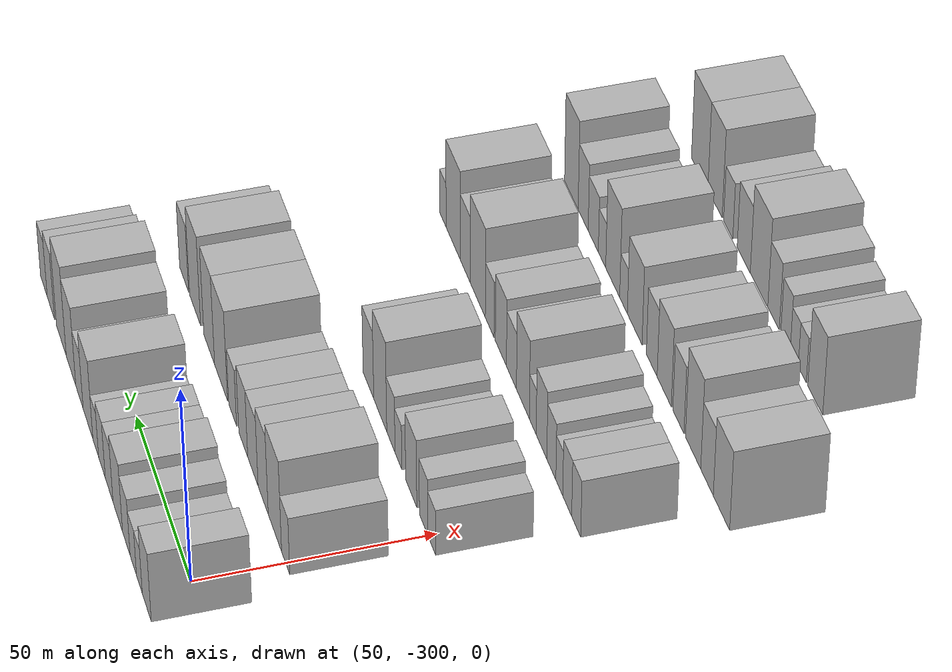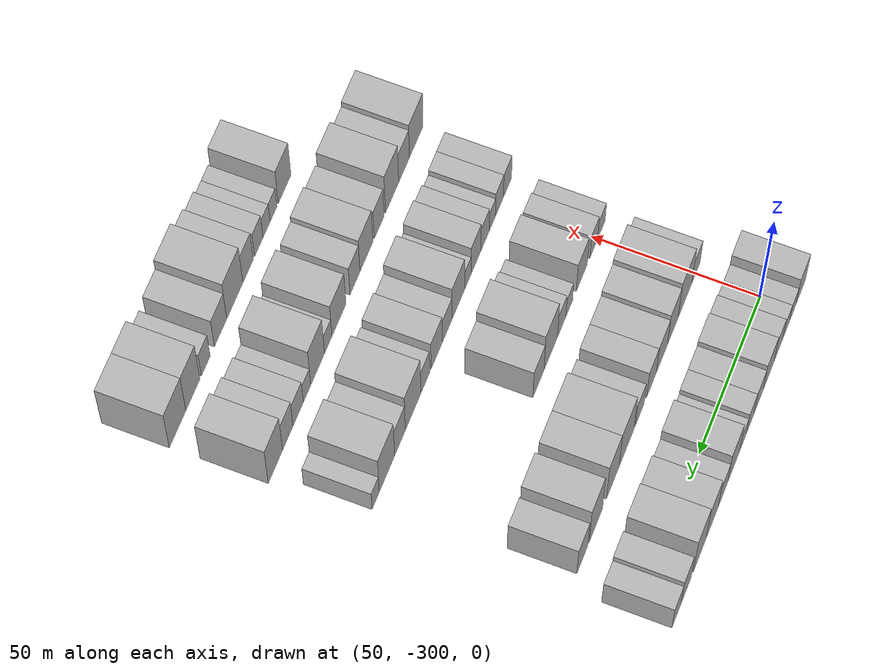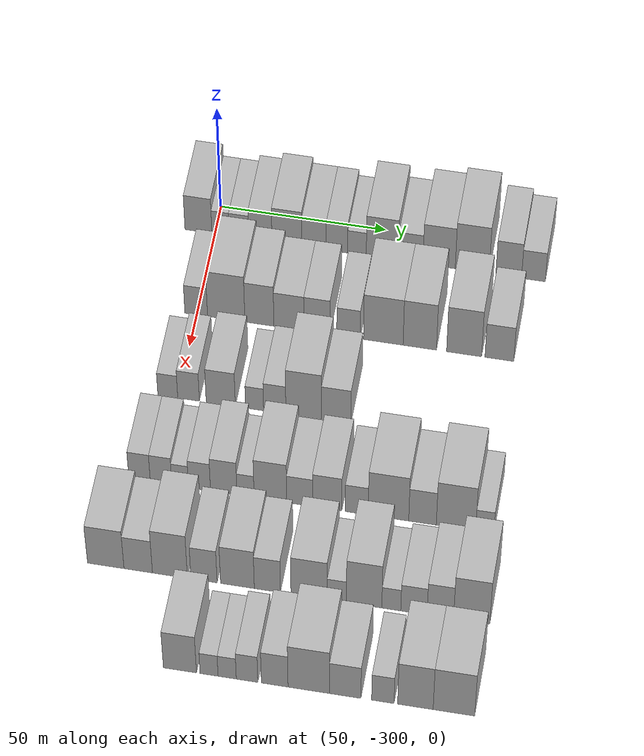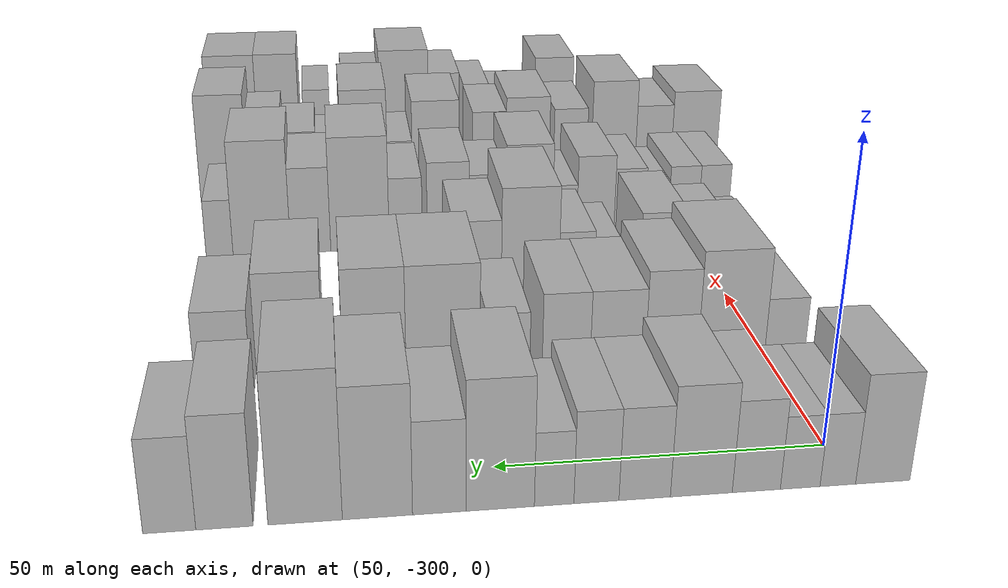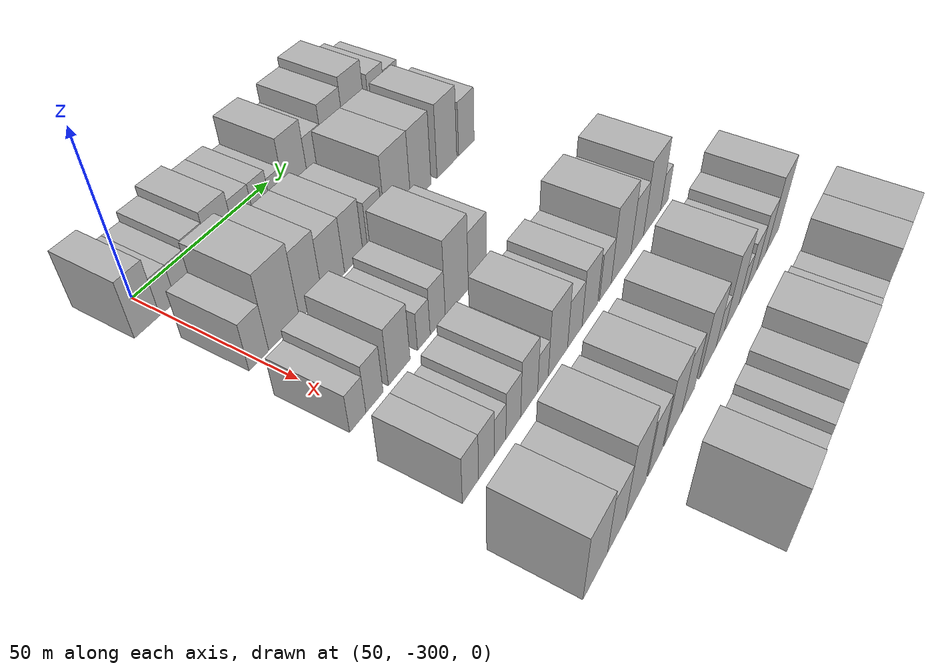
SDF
<sdf version="1.6">
 <world name="default">
  <model name="building_21">
   <static>1</static>
   <pose>50.0000 -304.9771 0 0.000000 0.000000 0.000000</pose>
   <link name="link">
    <pose>0 0 9.00 0 0 0</pose>
    <collision name="collision"><geometry><box><size>20.0000 8.1212 18.0000</size></box></geometry></collision>
    <visual name="visual">
     <cast_shadows>0</cast_shadows>
     <geometry><box><size>20.0000 8.1212 18.0000</size></box></geometry>
     <material>
      <script>
       <uri>model://HANNAS_wall/materials/scripts</uri>
       <uri>model://HANNAS_wall/materials/textures</uri>
       <name>vrc/HANNAS_wall</name>
      </script>
     </material>
    </visual>
   </link>
  </model>
  <model name="building_22">
   <static>1</static>
   <pose>50.0000 -298.2765 0 0.000000 0.000000 0.000000</pose>
   <link name="link">
    <pose>0 0 6.00 0 0 0</pose>
    <collision name="collision"><geometry><box><size>20.0000 5.2802 12.0000</size></box></geometry></collision>
    <visual name="visual">
     <cast_shadows>0</cast_shadows>
     <geometry><box><size>20.0000 5.2802 12.0000</size></box></geometry>
     <material>
      <script>
       <uri>model://HANNAS_wall/materials/scripts</uri>
       <uri>model://HANNAS_wall/materials/textures</uri>
       <name>vrc/HANNAS_wall</name>
      </script>
     </material>
    </visual>
   </link>
  </model>
  <model name="building_23">
   <static>1</static>
   <pose>50.0000 -292.7118 0 0.000000 0.000000 0.000000</pose>
   <link name="link">
    <pose>0 0 6.00 0 0 0</pose>
    <collision name="collision"><geometry><box><size>20.0000 5.8492 12.0000</size></box></geometry></collision>
    <visual name="visual">
     <cast_shadows>0</cast_shadows>
     <geometry><box><size>20.0000 5.8492 12.0000</size></box></geometry>
     <material>
      <script>
       <uri>model://HANNAS_wall/materials/scripts</uri>
       <uri>model://HANNAS_wall/materials/textures</uri>
       <name>vrc/HANNAS_wall</name>
      </script>
     </material>
    </visual>
   </link>
  </model>
  <model name="building_24">
   <static>1</static>
   <pose>50.0000 -286.2652 0 0.000000 0.000000 0.000000</pose>
   <link name="link">
    <pose>0 0 7.50 0 0 0</pose>
    <collision name="collision"><geometry><box><size>20.0000 7.0440 15.0000</size></box></geometry></collision>
    <visual name="visual">
     <cast_shadows>0</cast_shadows>
     <geometry><box><size>20.0000 7.0440 15.0000</size></box></geometry>
     <material>
      <script>
       <uri>model://HANNAS_wall/materials/scripts</uri>
       <uri>model://HANNAS_wall/materials/textures</uri>
       <name>vrc/HANNAS_wall</name>
      </script>
     </material>
    </visual>
   </link>
  </model>
  <model name="building_25">
   <static>1</static>
   <pose>50.0000 -278.2577 0 0.000000 0.000000 0.000000</pose>
   <link name="link">
    <pose>0 0 9.00 0 0 0</pose>
    <collision name="collision"><geometry><box><size>20.0000 8.9712 18.0000</size></box></geometry></collision>
    <visual name="visual">
     <cast_shadows>0</cast_shadows>
     <geometry><box><size>20.0000 8.9712 18.0000</size></box></geometry>
     <material>
      <script>
       <uri>model://HANNAS_wall/materials/scripts</uri>
       <uri>model://HANNAS_wall/materials/textures</uri>
       <name>vrc/HANNAS_wall</name>
      </script>
     </material>
    </visual>
   </link>
  </model>
  <model name="building_26">
   <static>1</static>
   <pose>50.0000 -270.0726 0 0.000000 0.000000 0.000000</pose>
   <link name="link">
    <pose>0 0 7.50 0 0 0</pose>
    <collision name="collision"><geometry><box><size>20.0000 7.3989 15.0000</size></box></geometry></collision>
    <visual name="visual">
     <cast_shadows>0</cast_shadows>
     <geometry><box><size>20.0000 7.3989 15.0000</size></box></geometry>
     <material>
      <script>
       <uri>model://HANNAS_wall/materials/scripts</uri>
       <uri>model://HANNAS_wall/materials/textures</uri>
       <name>vrc/HANNAS_wall</name>
      </script>
     </material>
    </visual>
   </link>
  </model>
  <model name="building_27">
   <static>1</static>
   <pose>50.0000 -263.1609 0 0.000000 0.000000 0.000000</pose>
   <link name="link">
    <pose>0 0 7.50 0 0 0</pose>
    <collision name="collision"><geometry><box><size>20.0000 6.4247 15.0000</size></box></geometry></collision>
    <visual name="visual">
     <cast_shadows>0</cast_shadows>
     <geometry><box><size>20.0000 6.4247 15.0000</size></box></geometry>
     <material>
      <script>
       <uri>model://HANNAS_wall/materials/scripts</uri>
       <uri>model://HANNAS_wall/materials/textures</uri>
       <name>vrc/HANNAS_wall</name>
      </script>
     </material>
    </visual>
   </link>
  </model>
  <model name="building_28">
   <static>1</static>
   <pose>50.0000 -257.1534 0 0.000000 0.000000 0.000000</pose>
   <link name="link">
    <pose>0 0 6.00 0 0 0</pose>
    <collision name="collision"><geometry><box><size>20.0000 5.5902 12.0000</size></box></geometry></collision>
    <visual name="visual">
     <cast_shadows>0</cast_shadows>
     <geometry><box><size>20.0000 5.5902 12.0000</size></box></geometry>
     <material>
      <script>
       <uri>model://HANNAS_wall/materials/scripts</uri>
       <uri>model://HANNAS_wall/materials/textures</uri>
       <name>vrc/HANNAS_wall</name>
      </script>
     </material>
    </visual>
   </link>
  </model>
  <model name="building_29">
   <static>1</static>
   <pose>50.0000 -249.5516 0 0.000000 0.000000 0.000000</pose>
   <link name="link">
    <pose>0 0 10.50 0 0 0</pose>
    <collision name="collision"><geometry><box><size>20.0000 9.6134 21.0000</size></box></geometry></collision>
    <visual name="visual">
     <cast_shadows>0</cast_shadows>
     <geometry><box><size>20.0000 9.6134 21.0000</size></box></geometry>
     <material>
      <script>
       <uri>model://HANNAS_wall/materials/scripts</uri>
       <uri>model://HANNAS_wall/materials/textures</uri>
       <name>vrc/HANNAS_wall</name>
      </script>
     </material>
    </visual>
   </link>
  </model>
  <model name="building_30">
   <static>1</static>
   <pose>50.0000 -241.0410 0 0.000000 0.000000 0.000000</pose>
   <link name="link">
    <pose>0 0 7.50 0 0 0</pose>
    <collision name="collision"><geometry><box><size>20.0000 7.4080 15.0000</size></box></geometry></collision>
    <visual name="visual">
     <cast_shadows>0</cast_shadows>
     <geometry><box><size>20.0000 7.4080 15.0000</size></box></geometry>
     <material>
      <script>
       <uri>model://HANNAS_wall/materials/scripts</uri>
       <uri>model://HANNAS_wall/materials/textures</uri>
       <name>vrc/HANNAS_wall</name>
      </script>
     </material>
    </visual>
   </link>
  </model>
  <model name="building_31">
   <static>1</static>
   <pose>50.0000 -232.5062 0 0.000000 0.000000 0.000000</pose>
   <link name="link">
    <pose>0 0 10.50 0 0 0</pose>
    <collision name="collision"><geometry><box><size>20.0000 9.6617 21.0000</size></box></geometry></collision>
    <visual name="visual">
     <cast_shadows>0</cast_shadows>
     <geometry><box><size>20.0000 9.6617 21.0000</size></box></geometry>
     <material>
      <script>
       <uri>model://HANNAS_wall/materials/scripts</uri>
       <uri>model://HANNAS_wall/materials/textures</uri>
       <name>vrc/HANNAS_wall</name>
      </script>
     </material>
    </visual>
   </link>
  </model>
  <model name="building_32">
   <static>1</static>
   <pose>50.0000 -222.6130 0 0.000000 0.000000 0.000000</pose>
   <link name="link">
    <pose>0 0 12.00 0 0 0</pose>
    <collision name="collision"><geometry><box><size>20.0000 10.1246 24.0000</size></box></geometry></collision>
    <visual name="visual">
     <cast_shadows>0</cast_shadows>
     <geometry><box><size>20.0000 10.1246 24.0000</size></box></geometry>
     <material>
      <script>
       <uri>model://HANNAS_wall/materials/scripts</uri>
       <uri>model://HANNAS_wall/materials/textures</uri>
       <name>vrc/HANNAS_wall</name>
      </script>
     </material>
    </visual>
   </link>
  </model>
  <model name="building_33">
   <static>1</static>
   <pose>50.0000 -211.7098 0 0.000000 0.000000 0.000000</pose>
   <link name="link">
    <pose>0 0 9.00 0 0 0</pose>
    <collision name="collision"><geometry><box><size>20.0000 7.6817 18.0000</size></box></geometry></collision>
    <visual name="visual">
     <cast_shadows>0</cast_shadows>
     <geometry><box><size>20.0000 7.6817 18.0000</size></box></geometry>
     <material>
      <script>
       <uri>model://HANNAS_wall/materials/scripts</uri>
       <uri>model://HANNAS_wall/materials/textures</uri>
       <name>vrc/HANNAS_wall</name>
      </script>
     </material>
    </visual>
   </link>
  </model>
  <model name="building_34">
   <static>1</static>
   <pose>50.0000 -204.3308 0 0.000000 0.000000 0.000000</pose>
   <link name="link">
    <pose>0 0 7.50 0 0 0</pose>
    <collision name="collision"><geometry><box><size>20.0000 7.0763 15.0000</size></box></geometry></collision>
    <visual name="visual">
     <cast_shadows>0</cast_shadows>
     <geometry><box><size>20.0000 7.0763 15.0000</size></box></geometry>
     <material>
      <script>
       <uri>model://HANNAS_wall/materials/scripts</uri>
       <uri>model://HANNAS_wall/materials/textures</uri>
       <name>vrc/HANNAS_wall</name>
      </script>
     </material>
    </visual>
   </link>
  </model>
  <model name="building_142">
   <static>1</static>
   <pose>79.0000 -300.0942 0 0.000000 0.000000 0.000000</pose>
   <link name="link">
    <pose>0 0 7.50 0 0 0</pose>
    <collision name="collision"><geometry><box><size>20.0000 6.7628 15.0000</size></box></geometry></collision>
    <visual name="visual">
     <cast_shadows>0</cast_shadows>
     <geometry><box><size>20.0000 6.7628 15.0000</size></box></geometry>
     <material>
      <script>
       <uri>model://HANNAS_wall/materials/scripts</uri>
       <uri>model://HANNAS_wall/materials/textures</uri>
       <name>vrc/HANNAS_wall</name>
      </script>
     </material>
    </visual>
   </link>
  </model>
  <model name="building_143">
   <static>1</static>
   <pose>79.0000 -291.1347 0 0.000000 0.000000 0.000000</pose>
   <link name="link">
    <pose>0 0 12.00 0 0 0</pose>
    <collision name="collision"><geometry><box><size>20.0000 11.1562 24.0000</size></box></geometry></collision>
    <visual name="visual">
     <cast_shadows>0</cast_shadows>
     <geometry><box><size>20.0000 11.1562 24.0000</size></box></geometry>
     <material>
      <script>
       <uri>model://HANNAS_wall/materials/scripts</uri>
       <uri>model://HANNAS_wall/materials/textures</uri>
       <name>vrc/HANNAS_wall</name>
      </script>
     </material>
    </visual>
   </link>
  </model>
  <model name="building_144">
   <static>1</static>
   <pose>79.0000 -281.2378 0 0.000000 0.000000 0.000000</pose>
   <link name="link">
    <pose>0 0 10.50 0 0 0</pose>
    <collision name="collision"><geometry><box><size>20.0000 8.6376 21.0000</size></box></geometry></collision>
    <visual name="visual">
     <cast_shadows>0</cast_shadows>
     <geometry><box><size>20.0000 8.6376 21.0000</size></box></geometry>
     <material>
      <script>
       <uri>model://HANNAS_wall/materials/scripts</uri>
       <uri>model://HANNAS_wall/materials/textures</uri>
       <name>vrc/HANNAS_wall</name>
      </script>
     </material>
    </visual>
   </link>
  </model>
  <model name="building_145">
   <static>1</static>
   <pose>79.0000 -272.4501 0 0.000000 0.000000 0.000000</pose>
   <link name="link">
    <pose>0 0 9.00 0 0 0</pose>
    <collision name="collision"><geometry><box><size>20.0000 8.9377 18.0000</size></box></geometry></collision>
    <visual name="visual">
     <cast_shadows>0</cast_shadows>
     <geometry><box><size>20.0000 8.9377 18.0000</size></box></geometry>
     <material>
      <script>
       <uri>model://HANNAS_wall/materials/scripts</uri>
       <uri>model://HANNAS_wall/materials/textures</uri>
       <name>vrc/HANNAS_wall</name>
      </script>
     </material>
    </visual>
   </link>
  </model>
  <model name="building_146">
   <static>1</static>
   <pose>79.0000 -264.1058 0 0.000000 0.000000 0.000000</pose>
   <link name="link">
    <pose>0 0 9.00 0 0 0</pose>
    <collision name="collision"><geometry><box><size>20.0000 7.7509 18.0000</size></box></geometry></collision>
    <visual name="visual">
     <cast_shadows>0</cast_shadows>
     <geometry><box><size>20.0000 7.7509 18.0000</size></box></geometry>
     <material>
      <script>
       <uri>model://HANNAS_wall/materials/scripts</uri>
       <uri>model://HANNAS_wall/materials/textures</uri>
       <name>vrc/HANNAS_wall</name>
      </script>
     </material>
    </visual>
   </link>
  </model>
  <model name="building_147">
   <static>1</static>
   <pose>79.0000 -254.7581 0 0.000000 0.000000 0.000000</pose>
   <link name="link">
    <pose>0 0 7.50 0 0 0</pose>
    <collision name="collision"><geometry><box><size>20.0000 6.9445 15.0000</size></box></geometry></collision>
    <visual name="visual">
     <cast_shadows>0</cast_shadows>
     <geometry><box><size>20.0000 6.9445 15.0000</size></box></geometry>
     <material>
      <script>
       <uri>model://HANNAS_wall/materials/scripts</uri>
       <uri>model://HANNAS_wall/materials/textures</uri>
       <name>vrc/HANNAS_wall</name>
      </script>
     </material>
    </visual>
   </link>
  </model>
  <model name="building_148">
   <static>1</static>
   <pose>79.0000 -244.4226 0 0.000000 0.000000 0.000000</pose>
   <link name="link">
    <pose>0 0 12.00 0 0 0</pose>
    <collision name="collision"><geometry><box><size>20.0000 11.7264 24.0000</size></box></geometry></collision>
    <visual name="visual">
     <cast_shadows>0</cast_shadows>
     <geometry><box><size>20.0000 11.7264 24.0000</size></box></geometry>
     <material>
      <script>
       <uri>model://HANNAS_wall/materials/scripts</uri>
       <uri>model://HANNAS_wall/materials/textures</uri>
       <name>vrc/HANNAS_wall</name>
      </script>
     </material>
    </visual>
   </link>
  </model>
  <model name="building_149">
   <static>1</static>
   <pose>79.0000 -233.6272 0 0.000000 0.000000 0.000000</pose>
   <link name="link">
    <pose>0 0 12.00 0 0 0</pose>
    <collision name="collision"><geometry><box><size>20.0000 9.8645 24.0000</size></box></geometry></collision>
    <visual name="visual">
     <cast_shadows>0</cast_shadows>
     <geometry><box><size>20.0000 9.8645 24.0000</size></box></geometry>
     <material>
      <script>
       <uri>model://HANNAS_wall/materials/scripts</uri>
       <uri>model://HANNAS_wall/materials/textures</uri>
       <name>vrc/HANNAS_wall</name>
      </script>
     </material>
    </visual>
   </link>
  </model>
  <model name="building_150">
   <static>1</static>
   <pose>79.0000 -220.5355 0 0.000000 0.000000 0.000000</pose>
   <link name="link">
    <pose>0 0 12.00 0 0 0</pose>
    <collision name="collision"><geometry><box><size>20.0000 10.3187 24.0000</size></box></geometry></collision>
    <visual name="visual">
     <cast_shadows>0</cast_shadows>
     <geometry><box><size>20.0000 10.3187 24.0000</size></box></geometry>
     <material>
      <script>
       <uri>model://HANNAS_wall/materials/scripts</uri>
       <uri>model://HANNAS_wall/materials/textures</uri>
       <name>vrc/HANNAS_wall</name>
      </script>
     </material>
    </visual>
   </link>
  </model>
  <model name="building_151">
   <static>1</static>
   <pose>79.0000 -210.1328 0 0.000000 0.000000 0.000000</pose>
   <link name="link">
    <pose>0 0 9.00 0 0 0</pose>
    <collision name="collision"><geometry><box><size>20.0000 8.4867 18.0000</size></box></geometry></collision>
    <visual name="visual">
     <cast_shadows>0</cast_shadows>
     <geometry><box><size>20.0000 8.4867 18.0000</size></box></geometry>
     <material>
      <script>
       <uri>model://HANNAS_wall/materials/scripts</uri>
       <uri>model://HANNAS_wall/materials/textures</uri>
       <name>vrc/HANNAS_wall</name>
      </script>
     </material>
    </visual>
   </link>
  </model>
  <model name="building_256">
   <static>1</static>
   <pose>108.0000 -302.9293 0 0.000000 0.000000 0.000000</pose>
   <link name="link">
    <pose>0 0 6.00 0 0 0</pose>
    <collision name="collision"><geometry><box><size>20.0000 5.8659 12.0000</size></box></geometry></collision>
    <visual name="visual">
     <cast_shadows>0</cast_shadows>
     <geometry><box><size>20.0000 5.8659 12.0000</size></box></geometry>
     <material>
      <script>
       <uri>model://HANNAS_wall/materials/scripts</uri>
       <uri>model://HANNAS_wall/materials/textures</uri>
       <name>vrc/HANNAS_wall</name>
      </script>
     </material>
    </visual>
   </link>
  </model>
  <model name="building_257">
   <static>1</static>
   <pose>108.0000 -296.7991 0 0.000000 0.000000 0.000000</pose>
   <link name="link">
    <pose>0 0 7.50 0 0 0</pose>
    <collision name="collision"><geometry><box><size>20.0000 6.3945 15.0000</size></box></geometry></collision>
    <visual name="visual">
     <cast_shadows>0</cast_shadows>
     <geometry><box><size>20.0000 6.3945 15.0000</size></box></geometry>
     <material>
      <script>
       <uri>model://HANNAS_wall/materials/scripts</uri>
       <uri>model://HANNAS_wall/materials/textures</uri>
       <name>vrc/HANNAS_wall</name>
      </script>
     </material>
    </visual>
   </link>
  </model>
  <model name="building_258">
   <static>1</static>
   <pose>108.0000 -287.3062 0 0.000000 0.000000 0.000000</pose>
   <link name="link">
    <pose>0 0 9.00 0 0 0</pose>
    <collision name="collision"><geometry><box><size>20.0000 8.5913 18.0000</size></box></geometry></collision>
    <visual name="visual">
     <cast_shadows>0</cast_shadows>
     <geometry><box><size>20.0000 8.5913 18.0000</size></box></geometry>
     <material>
      <script>
       <uri>model://HANNAS_wall/materials/scripts</uri>
       <uri>model://HANNAS_wall/materials/textures</uri>
       <name>vrc/HANNAS_wall</name>
      </script>
     </material>
    </visual>
   </link>
  </model>
  <model name="building_259">
   <static>1</static>
   <pose>108.0000 -277.3535 0 0.000000 0.000000 0.000000</pose>
   <link name="link">
    <pose>0 0 6.00 0 0 0</pose>
    <collision name="collision"><geometry><box><size>20.0000 5.3141 12.0000</size></box></geometry></collision>
    <visual name="visual">
     <cast_shadows>0</cast_shadows>
     <geometry><box><size>20.0000 5.3141 12.0000</size></box></geometry>
     <material>
      <script>
       <uri>model://HANNAS_wall/materials/scripts</uri>
       <uri>model://HANNAS_wall/materials/textures</uri>
       <name>vrc/HANNAS_wall</name>
      </script>
     </material>
    </visual>
   </link>
  </model>
  <model name="building_260">
   <static>1</static>
   <pose>108.0000 -271.4224 0 0.000000 0.000000 0.000000</pose>
   <link name="link">
    <pose>0 0 7.50 0 0 0</pose>
    <collision name="collision"><geometry><box><size>20.0000 6.5480 15.0000</size></box></geometry></collision>
    <visual name="visual">
     <cast_shadows>0</cast_shadows>
     <geometry><box><size>20.0000 6.5480 15.0000</size></box></geometry>
     <material>
      <script>
       <uri>model://HANNAS_wall/materials/scripts</uri>
       <uri>model://HANNAS_wall/materials/textures</uri>
       <name>vrc/HANNAS_wall</name>
      </script>
     </material>
    </visual>
   </link>
  </model>
  <model name="building_261">
   <static>1</static>
   <pose>108.0000 -262.9198 0 0.000000 0.000000 0.000000</pose>
   <link name="link">
    <pose>0 0 12.00 0 0 0</pose>
    <collision name="collision"><geometry><box><size>20.0000 10.4573 24.0000</size></box></geometry></collision>
    <visual name="visual">
     <cast_shadows>0</cast_shadows>
     <geometry><box><size>20.0000 10.4573 24.0000</size></box></geometry>
     <material>
      <script>
       <uri>model://HANNAS_wall/materials/scripts</uri>
       <uri>model://HANNAS_wall/materials/textures</uri>
       <name>vrc/HANNAS_wall</name>
      </script>
     </material>
    </visual>
   </link>
  </model>
  <model name="building_262">
   <static>1</static>
   <pose>108.0000 -253.3755 0 0.000000 0.000000 0.000000</pose>
   <link name="link">
    <pose>0 0 9.00 0 0 0</pose>
    <collision name="collision"><geometry><box><size>20.0000 8.6313 18.0000</size></box></geometry></collision>
    <visual name="visual">
     <cast_shadows>0</cast_shadows>
     <geometry><box><size>20.0000 8.6313 18.0000</size></box></geometry>
     <material>
      <script>
       <uri>model://HANNAS_wall/materials/scripts</uri>
       <uri>model://HANNAS_wall/materials/textures</uri>
       <name>vrc/HANNAS_wall</name>
      </script>
     </material>
    </visual>
   </link>
  </model>
  <model name="building_364">
   <static>1</static>
   <pose>137.0000 -305.4698 0 0.000000 0.000000 0.000000</pose>
   <link name="link">
    <pose>0 0 7.50 0 0 0</pose>
    <collision name="collision"><geometry><box><size>20.0000 6.2484 15.0000</size></box></geometry></collision>
    <visual name="visual">
     <cast_shadows>0</cast_shadows>
     <geometry><box><size>20.0000 6.2484 15.0000</size></box></geometry>
     <material>
      <script>
       <uri>model://HANNAS_wall/materials/scripts</uri>
       <uri>model://HANNAS_wall/materials/textures</uri>
       <name>vrc/HANNAS_wall</name>
      </script>
     </material>
    </visual>
   </link>
  </model>
  <model name="building_365">
   <static>1</static>
   <pose>137.0000 -299.2043 0 0.000000 0.000000 0.000000</pose>
   <link name="link">
    <pose>0 0 7.50 0 0 0</pose>
    <collision name="collision"><geometry><box><size>20.0000 6.2826 15.0000</size></box></geometry></collision>
    <visual name="visual">
     <cast_shadows>0</cast_shadows>
     <geometry><box><size>20.0000 6.2826 15.0000</size></box></geometry>
     <material>
      <script>
       <uri>model://HANNAS_wall/materials/scripts</uri>
       <uri>model://HANNAS_wall/materials/textures</uri>
       <name>vrc/HANNAS_wall</name>
      </script>
     </material>
    </visual>
   </link>
  </model>
  <model name="building_366">
   <static>1</static>
   <pose>137.0000 -293.6504 0 0.000000 0.000000 0.000000</pose>
   <link name="link">
    <pose>0 0 6.00 0 0 0</pose>
    <collision name="collision"><geometry><box><size>20.0000 4.8252 12.0000</size></box></geometry></collision>
    <visual name="visual">
     <cast_shadows>0</cast_shadows>
     <geometry><box><size>20.0000 4.8252 12.0000</size></box></geometry>
     <material>
      <script>
       <uri>model://HANNAS_wall/materials/scripts</uri>
       <uri>model://HANNAS_wall/materials/textures</uri>
       <name>vrc/HANNAS_wall</name>
      </script>
     </material>
    </visual>
   </link>
  </model>
  <model name="building_367">
   <static>1</static>
   <pose>137.0000 -288.0318 0 0.000000 0.000000 0.000000</pose>
   <link name="link">
    <pose>0 0 7.50 0 0 0</pose>
    <collision name="collision"><geometry><box><size>20.0000 6.4121 15.0000</size></box></geometry></collision>
    <visual name="visual">
     <cast_shadows>0</cast_shadows>
     <geometry><box><size>20.0000 6.4121 15.0000</size></box></geometry>
     <material>
      <script>
       <uri>model://HANNAS_wall/materials/scripts</uri>
       <uri>model://HANNAS_wall/materials/textures</uri>
       <name>vrc/HANNAS_wall</name>
      </script>
     </material>
    </visual>
   </link>
  </model>
  <model name="building_368">
   <static>1</static>
   <pose>137.0000 -280.9792 0 0.000000 0.000000 0.000000</pose>
   <link name="link">
    <pose>0 0 9.00 0 0 0</pose>
    <collision name="collision"><geometry><box><size>20.0000 7.6930 18.0000</size></box></geometry></collision>
    <visual name="visual">
     <cast_shadows>0</cast_shadows>
     <geometry><box><size>20.0000 7.6930 18.0000</size></box></geometry>
     <material>
      <script>
       <uri>model://HANNAS_wall/materials/scripts</uri>
       <uri>model://HANNAS_wall/materials/textures</uri>
       <name>vrc/HANNAS_wall</name>
      </script>
     </material>
    </visual>
   </link>
  </model>
  <model name="building_369">
   <static>1</static>
   <pose>137.0000 -274.6477 0 0.000000 0.000000 0.000000</pose>
   <link name="link">
    <pose>0 0 6.00 0 0 0</pose>
    <collision name="collision"><geometry><box><size>20.0000 4.9699 12.0000</size></box></geometry></collision>
    <visual name="visual">
     <cast_shadows>0</cast_shadows>
     <geometry><box><size>20.0000 4.9699 12.0000</size></box></geometry>
     <material>
      <script>
       <uri>model://HANNAS_wall/materials/scripts</uri>
       <uri>model://HANNAS_wall/materials/textures</uri>
       <name>vrc/HANNAS_wall</name>
      </script>
     </material>
    </visual>
   </link>
  </model>
  <model name="building_370">
   <static>1</static>
   <pose>137.0000 -267.4307 0 0.000000 0.000000 0.000000</pose>
   <link name="link">
    <pose>0 0 10.50 0 0 0</pose>
    <collision name="collision"><geometry><box><size>20.0000 9.4641 21.0000</size></box></geometry></collision>
    <visual name="visual">
     <cast_shadows>0</cast_shadows>
     <geometry><box><size>20.0000 9.4641 21.0000</size></box></geometry>
     <material>
      <script>
       <uri>model://HANNAS_wall/materials/scripts</uri>
       <uri>model://HANNAS_wall/materials/textures</uri>
       <name>vrc/HANNAS_wall</name>
      </script>
     </material>
    </visual>
   </link>
  </model>
  <model name="building_371">
   <static>1</static>
   <pose>137.0000 -258.9625 0 0.000000 0.000000 0.000000</pose>
   <link name="link">
    <pose>0 0 7.50 0 0 0</pose>
    <collision name="collision"><geometry><box><size>20.0000 7.4724 15.0000</size></box></geometry></collision>
    <visual name="visual">
     <cast_shadows>0</cast_shadows>
     <geometry><box><size>20.0000 7.4724 15.0000</size></box></geometry>
     <material>
      <script>
       <uri>model://HANNAS_wall/materials/scripts</uri>
       <uri>model://HANNAS_wall/materials/textures</uri>
       <name>vrc/HANNAS_wall</name>
      </script>
     </material>
    </visual>
   </link>
  </model>
  <model name="building_372">
   <static>1</static>
   <pose>137.0000 -250.9957 0 0.000000 0.000000 0.000000</pose>
   <link name="link">
    <pose>0 0 9.00 0 0 0</pose>
    <collision name="collision"><geometry><box><size>20.0000 8.4612 18.0000</size></box></geometry></collision>
    <visual name="visual">
     <cast_shadows>0</cast_shadows>
     <geometry><box><size>20.0000 8.4612 18.0000</size></box></geometry>
     <material>
      <script>
       <uri>model://HANNAS_wall/materials/scripts</uri>
       <uri>model://HANNAS_wall/materials/textures</uri>
       <name>vrc/HANNAS_wall</name>
      </script>
     </material>
    </visual>
   </link>
  </model>
  <model name="building_373">
   <static>1</static>
   <pose>137.0000 -242.4454 0 0.000000 0.000000 0.000000</pose>
   <link name="link">
    <pose>0 0 7.50 0 0 0</pose>
    <collision name="collision"><geometry><box><size>20.0000 6.6393 15.0000</size></box></geometry></collision>
    <visual name="visual">
     <cast_shadows>0</cast_shadows>
     <geometry><box><size>20.0000 6.6393 15.0000</size></box></geometry>
     <material>
      <script>
       <uri>model://HANNAS_wall/materials/scripts</uri>
       <uri>model://HANNAS_wall/materials/textures</uri>
       <name>vrc/HANNAS_wall</name>
      </script>
     </material>
    </visual>
   </link>
  </model>
  <model name="building_374">
   <static>1</static>
   <pose>137.0000 -233.2963 0 0.000000 0.000000 0.000000</pose>
   <link name="link">
    <pose>0 0 12.00 0 0 0</pose>
    <collision name="collision"><geometry><box><size>20.0000 11.6589 24.0000</size></box></geometry></collision>
    <visual name="visual">
     <cast_shadows>0</cast_shadows>
     <geometry><box><size>20.0000 11.6589 24.0000</size></box></geometry>
     <material>
      <script>
       <uri>model://HANNAS_wall/materials/scripts</uri>
       <uri>model://HANNAS_wall/materials/textures</uri>
       <name>vrc/HANNAS_wall</name>
      </script>
     </material>
    </visual>
   </link>
  </model>
  <model name="building_375">
   <static>1</static>
   <pose>137.0000 -223.5000 0 0.000000 0.000000 0.000000</pose>
   <link name="link">
    <pose>0 0 9.00 0 0 0</pose>
    <collision name="collision"><geometry><box><size>20.0000 7.9338 18.0000</size></box></geometry></collision>
    <visual name="visual">
     <cast_shadows>0</cast_shadows>
     <geometry><box><size>20.0000 7.9338 18.0000</size></box></geometry>
     <material>
      <script>
       <uri>model://HANNAS_wall/materials/scripts</uri>
       <uri>model://HANNAS_wall/materials/textures</uri>
       <name>vrc/HANNAS_wall</name>
      </script>
     </material>
    </visual>
   </link>
  </model>
  <model name="building_376">
   <static>1</static>
   <pose>137.0000 -213.8796 0 0.000000 0.000000 0.000000</pose>
   <link name="link">
    <pose>0 0 12.00 0 0 0</pose>
    <collision name="collision"><geometry><box><size>20.0000 11.3070 24.0000</size></box></geometry></collision>
    <visual name="visual">
     <cast_shadows>0</cast_shadows>
     <geometry><box><size>20.0000 11.3070 24.0000</size></box></geometry>
     <material>
      <script>
       <uri>model://HANNAS_wall/materials/scripts</uri>
       <uri>model://HANNAS_wall/materials/textures</uri>
       <name>vrc/HANNAS_wall</name>
      </script>
     </material>
    </visual>
   </link>
  </model>
  <model name="building_377">
   <static>1</static>
   <pose>137.0000 -205.6017 0 0.000000 0.000000 0.000000</pose>
   <link name="link">
    <pose>0 0 6.00 0 0 0</pose>
    <collision name="collision"><geometry><box><size>20.0000 5.2489 12.0000</size></box></geometry></collision>
    <visual name="visual">
     <cast_shadows>0</cast_shadows>
     <geometry><box><size>20.0000 5.2489 12.0000</size></box></geometry>
     <material>
      <script>
       <uri>model://HANNAS_wall/materials/scripts</uri>
       <uri>model://HANNAS_wall/materials/textures</uri>
       <name>vrc/HANNAS_wall</name>
      </script>
     </material>
    </visual>
   </link>
  </model>
  <model name="building_487">
   <static>1</static>
   <pose>166.0000 -309.4447 0 0.000000 0.000000 0.000000</pose>
   <link name="link">
    <pose>0 0 10.50 0 0 0</pose>
    <collision name="collision"><geometry><box><size>20.0000 10.4912 21.0000</size></box></geometry></collision>
    <visual name="visual">
     <cast_shadows>0</cast_shadows>
     <geometry><box><size>20.0000 10.4912 21.0000</size></box></geometry>
     <material>
      <script>
       <uri>model://HANNAS_wall/materials/scripts</uri>
       <uri>model://HANNAS_wall/materials/textures</uri>
       <name>vrc/HANNAS_wall</name>
      </script>
     </material>
    </visual>
   </link>
  </model>
  <model name="building_488">
   <static>1</static>
   <pose>166.0000 -300.0980 0 0.000000 0.000000 0.000000</pose>
   <link name="link">
    <pose>0 0 9.00 0 0 0</pose>
    <collision name="collision"><geometry><box><size>20.0000 8.2022 18.0000</size></box></geometry></collision>
    <visual name="visual">
     <cast_shadows>0</cast_shadows>
     <geometry><box><size>20.0000 8.2022 18.0000</size></box></geometry>
     <material>
      <script>
       <uri>model://HANNAS_wall/materials/scripts</uri>
       <uri>model://HANNAS_wall/materials/textures</uri>
       <name>vrc/HANNAS_wall</name>
      </script>
     </material>
    </visual>
   </link>
  </model>
  <model name="building_489">
   <static>1</static>
   <pose>166.0000 -290.9706 0 0.000000 0.000000 0.000000</pose>
   <link name="link">
    <pose>0 0 12.00 0 0 0</pose>
    <collision name="collision"><geometry><box><size>20.0000 10.0526 24.0000</size></box></geometry></collision>
    <visual name="visual">
     <cast_shadows>0</cast_shadows>
     <geometry><box><size>20.0000 10.0526 24.0000</size></box></geometry>
     <material>
      <script>
       <uri>model://HANNAS_wall/materials/scripts</uri>
       <uri>model://HANNAS_wall/materials/textures</uri>
       <name>vrc/HANNAS_wall</name>
      </script>
     </material>
    </visual>
   </link>
  </model>
  <model name="building_490">
   <static>1</static>
   <pose>166.0000 -281.1921 0 0.000000 0.000000 0.000000</pose>
   <link name="link">
    <pose>0 0 9.00 0 0 0</pose>
    <collision name="collision"><geometry><box><size>20.0000 7.5045 18.0000</size></box></geometry></collision>
    <visual name="visual">
     <cast_shadows>0</cast_shadows>
     <geometry><box><size>20.0000 7.5045 18.0000</size></box></geometry>
     <material>
      <script>
       <uri>model://HANNAS_wall/materials/scripts</uri>
       <uri>model://HANNAS_wall/materials/textures</uri>
       <name>vrc/HANNAS_wall</name>
      </script>
     </material>
    </visual>
   </link>
  </model>
  <model name="building_491">
   <static>1</static>
   <pose>166.0000 -271.6089 0 0.000000 0.000000 0.000000</pose>
   <link name="link">
    <pose>0 0 10.50 0 0 0</pose>
    <collision name="collision"><geometry><box><size>20.0000 9.6619 21.0000</size></box></geometry></collision>
    <visual name="visual">
     <cast_shadows>0</cast_shadows>
     <geometry><box><size>20.0000 9.6619 21.0000</size></box></geometry>
     <material>
      <script>
       <uri>model://HANNAS_wall/materials/scripts</uri>
       <uri>model://HANNAS_wall/materials/textures</uri>
       <name>vrc/HANNAS_wall</name>
      </script>
     </material>
    </visual>
   </link>
  </model>
  <model name="building_492">
   <static>1</static>
   <pose>166.0000 -263.0461 0 0.000000 0.000000 0.000000</pose>
   <link name="link">
    <pose>0 0 9.00 0 0 0</pose>
    <collision name="collision"><geometry><box><size>20.0000 7.4637 18.0000</size></box></geometry></collision>
    <visual name="visual">
     <cast_shadows>0</cast_shadows>
     <geometry><box><size>20.0000 7.4637 18.0000</size></box></geometry>
     <material>
      <script>
       <uri>model://HANNAS_wall/materials/scripts</uri>
       <uri>model://HANNAS_wall/materials/textures</uri>
       <name>vrc/HANNAS_wall</name>
      </script>
     </material>
    </visual>
   </link>
  </model>
  <model name="building_493">
   <static>1</static>
   <pose>166.0000 -251.1322 0 0.000000 0.000000 0.000000</pose>
   <link name="link">
    <pose>0 0 10.50 0 0 0</pose>
    <collision name="collision"><geometry><box><size>20.0000 10.3640 21.0000</size></box></geometry></collision>
    <visual name="visual">
     <cast_shadows>0</cast_shadows>
     <geometry><box><size>20.0000 10.3640 21.0000</size></box></geometry>
     <material>
      <script>
       <uri>model://HANNAS_wall/materials/scripts</uri>
       <uri>model://HANNAS_wall/materials/textures</uri>
       <name>vrc/HANNAS_wall</name>
      </script>
     </material>
    </visual>
   </link>
  </model>
  <model name="building_494">
   <static>1</static>
   <pose>166.0000 -243.2175 0 0.000000 0.000000 0.000000</pose>
   <link name="link">
    <pose>0 0 6.00 0 0 0</pose>
    <collision name="collision"><geometry><box><size>20.0000 5.4654 12.0000</size></box></geometry></collision>
    <visual name="visual">
     <cast_shadows>0</cast_shadows>
     <geometry><box><size>20.0000 5.4654 12.0000</size></box></geometry>
     <material>
      <script>
       <uri>model://HANNAS_wall/materials/scripts</uri>
       <uri>model://HANNAS_wall/materials/textures</uri>
       <name>vrc/HANNAS_wall</name>
      </script>
     </material>
    </visual>
   </link>
  </model>
  <model name="building_495">
   <static>1</static>
   <pose>166.0000 -235.4438 0 0.000000 0.000000 0.000000</pose>
   <link name="link">
    <pose>0 0 12.00 0 0 0</pose>
    <collision name="collision"><geometry><box><size>20.0000 10.0822 24.0000</size></box></geometry></collision>
    <visual name="visual">
     <cast_shadows>0</cast_shadows>
     <geometry><box><size>20.0000 10.0822 24.0000</size></box></geometry>
     <material>
      <script>
       <uri>model://HANNAS_wall/materials/scripts</uri>
       <uri>model://HANNAS_wall/materials/textures</uri>
       <name>vrc/HANNAS_wall</name>
      </script>
     </material>
    </visual>
   </link>
  </model>
  <model name="building_496">
   <static>1</static>
   <pose>166.0000 -227.7041 0 0.000000 0.000000 0.000000</pose>
   <link name="link">
    <pose>0 0 6.00 0 0 0</pose>
    <collision name="collision"><geometry><box><size>20.0000 5.3972 12.0000</size></box></geometry></collision>
    <visual name="visual">
     <cast_shadows>0</cast_shadows>
     <geometry><box><size>20.0000 5.3972 12.0000</size></box></geometry>
     <material>
      <script>
       <uri>model://HANNAS_wall/materials/scripts</uri>
       <uri>model://HANNAS_wall/materials/textures</uri>
       <name>vrc/HANNAS_wall</name>
      </script>
     </material>
    </visual>
   </link>
  </model>
  <model name="building_497">
   <static>1</static>
   <pose>166.0000 -221.2666 0 0.000000 0.000000 0.000000</pose>
   <link name="link">
    <pose>0 0 7.50 0 0 0</pose>
    <collision name="collision"><geometry><box><size>20.0000 7.4778 15.0000</size></box></geometry></collision>
    <visual name="visual">
     <cast_shadows>0</cast_shadows>
     <geometry><box><size>20.0000 7.4778 15.0000</size></box></geometry>
     <material>
      <script>
       <uri>model://HANNAS_wall/materials/scripts</uri>
       <uri>model://HANNAS_wall/materials/textures</uri>
       <name>vrc/HANNAS_wall</name>
      </script>
     </material>
    </visual>
   </link>
  </model>
  <model name="building_498">
   <static>1</static>
   <pose>166.0000 -213.7743 0 0.000000 0.000000 0.000000</pose>
   <link name="link">
    <pose>0 0 9.00 0 0 0</pose>
    <collision name="collision"><geometry><box><size>20.0000 7.5068 18.0000</size></box></geometry></collision>
    <visual name="visual">
     <cast_shadows>0</cast_shadows>
     <geometry><box><size>20.0000 7.5068 18.0000</size></box></geometry>
     <material>
      <script>
       <uri>model://HANNAS_wall/materials/scripts</uri>
       <uri>model://HANNAS_wall/materials/textures</uri>
       <name>vrc/HANNAS_wall</name>
      </script>
     </material>
    </visual>
   </link>
  </model>
  <model name="building_499">
   <static>1</static>
   <pose>166.0000 -204.8923 0 0.000000 0.000000 0.000000</pose>
   <link name="link">
    <pose>0 0 12.00 0 0 0</pose>
    <collision name="collision"><geometry><box><size>20.0000 10.2572 24.0000</size></box></geometry></collision>
    <visual name="visual">
     <cast_shadows>0</cast_shadows>
     <geometry><box><size>20.0000 10.2572 24.0000</size></box></geometry>
     <material>
      <script>
       <uri>model://HANNAS_wall/materials/scripts</uri>
       <uri>model://HANNAS_wall/materials/textures</uri>
       <name>vrc/HANNAS_wall</name>
      </script>
     </material>
    </visual>
   </link>
  </model>
  <model name="building_606">
   <static>1</static>
   <pose>195.0000 -282.4857 0 0.000000 0.000000 0.000000</pose>
   <link name="link">
    <pose>0 0 10.50 0 0 0</pose>
    <collision name="collision"><geometry><box><size>20.0000 9.3647 21.0000</size></box></geometry></collision>
    <visual name="visual">
     <cast_shadows>0</cast_shadows>
     <geometry><box><size>20.0000 9.3647 21.0000</size></box></geometry>
     <material>
      <script>
       <uri>model://HANNAS_wall/materials/scripts</uri>
       <uri>model://HANNAS_wall/materials/textures</uri>
       <name>vrc/HANNAS_wall</name>
      </script>
     </material>
    </visual>
   </link>
  </model>
  <model name="building_607">
   <static>1</static>
   <pose>195.0000 -274.2572 0 0.000000 0.000000 0.000000</pose>
   <link name="link">
    <pose>0 0 6.00 0 0 0</pose>
    <collision name="collision"><geometry><box><size>20.0000 5.0924 12.0000</size></box></geometry></collision>
    <visual name="visual">
     <cast_shadows>0</cast_shadows>
     <geometry><box><size>20.0000 5.0924 12.0000</size></box></geometry>
     <material>
      <script>
       <uri>model://HANNAS_wall/materials/scripts</uri>
       <uri>model://HANNAS_wall/materials/textures</uri>
       <name>vrc/HANNAS_wall</name>
      </script>
     </material>
    </visual>
   </link>
  </model>
  <model name="building_608">
   <static>1</static>
   <pose>195.0000 -269.1349 0 0.000000 0.000000 0.000000</pose>
   <link name="link">
    <pose>0 0 6.00 0 0 0</pose>
    <collision name="collision"><geometry><box><size>20.0000 5.1522 12.0000</size></box></geometry></collision>
    <visual name="visual">
     <cast_shadows>0</cast_shadows>
     <geometry><box><size>20.0000 5.1522 12.0000</size></box></geometry>
     <material>
      <script>
       <uri>model://HANNAS_wall/materials/scripts</uri>
       <uri>model://HANNAS_wall/materials/textures</uri>
       <name>vrc/HANNAS_wall</name>
      </script>
     </material>
    </visual>
   </link>
  </model>
  <model name="building_609">
   <static>1</static>
   <pose>195.0000 -263.5160 0 0.000000 0.000000 0.000000</pose>
   <link name="link">
    <pose>0 0 7.50 0 0 0</pose>
    <collision name="collision"><geometry><box><size>20.0000 6.0857 15.0000</size></box></geometry></collision>
    <visual name="visual">
     <cast_shadows>0</cast_shadows>
     <geometry><box><size>20.0000 6.0857 15.0000</size></box></geometry>
     <material>
      <script>
       <uri>model://HANNAS_wall/materials/scripts</uri>
       <uri>model://HANNAS_wall/materials/textures</uri>
       <name>vrc/HANNAS_wall</name>
      </script>
     </material>
    </visual>
   </link>
  </model>
  <model name="building_610">
   <static>1</static>
   <pose>195.0000 -255.7164 0 0.000000 0.000000 0.000000</pose>
   <link name="link">
    <pose>0 0 9.00 0 0 0</pose>
    <collision name="collision"><geometry><box><size>20.0000 7.5134 18.0000</size></box></geometry></collision>
    <visual name="visual">
     <cast_shadows>0</cast_shadows>
     <geometry><box><size>20.0000 7.5134 18.0000</size></box></geometry>
     <material>
      <script>
       <uri>model://HANNAS_wall/materials/scripts</uri>
       <uri>model://HANNAS_wall/materials/textures</uri>
       <name>vrc/HANNAS_wall</name>
      </script>
     </material>
    </visual>
   </link>
  </model>
  <model name="building_611">
   <static>1</static>
   <pose>195.0000 -246.1231 0 0.000000 0.000000 0.000000</pose>
   <link name="link">
    <pose>0 0 12.00 0 0 0</pose>
    <collision name="collision"><geometry><box><size>20.0000 11.6733 24.0000</size></box></geometry></collision>
    <visual name="visual">
     <cast_shadows>0</cast_shadows>
     <geometry><box><size>20.0000 11.6733 24.0000</size></box></geometry>
     <material>
      <script>
       <uri>model://HANNAS_wall/materials/scripts</uri>
       <uri>model://HANNAS_wall/materials/textures</uri>
       <name>vrc/HANNAS_wall</name>
      </script>
     </material>
    </visual>
   </link>
  </model>
  <model name="building_612">
   <static>1</static>
   <pose>195.0000 -235.8641 0 0.000000 0.000000 0.000000</pose>
   <link name="link">
    <pose>0 0 9.00 0 0 0</pose>
    <collision name="collision"><geometry><box><size>20.0000 8.8446 18.0000</size></box></geometry></collision>
    <visual name="visual">
     <cast_shadows>0</cast_shadows>
     <geometry><box><size>20.0000 8.8446 18.0000</size></box></geometry>
     <material>
      <script>
       <uri>model://HANNAS_wall/materials/scripts</uri>
       <uri>model://HANNAS_wall/materials/textures</uri>
       <name>vrc/HANNAS_wall</name>
      </script>
     </material>
    </visual>
   </link>
  </model>
  <model name="building_613">
   <static>1</static>
   <pose>195.0000 -225.2887 0 0.000000 0.000000 0.000000</pose>
   <link name="link">
    <pose>0 0 7.50 0 0 0</pose>
    <collision name="collision"><geometry><box><size>20.0000 6.3062 15.0000</size></box></geometry></collision>
    <visual name="visual">
     <cast_shadows>0</cast_shadows>
     <geometry><box><size>20.0000 6.3062 15.0000</size></box></geometry>
     <material>
      <script>
       <uri>model://HANNAS_wall/materials/scripts</uri>
       <uri>model://HANNAS_wall/materials/textures</uri>
       <name>vrc/HANNAS_wall</name>
      </script>
     </material>
    </visual>
   </link>
  </model>
  <model name="building_614">
   <static>1</static>
   <pose>195.0000 -216.1626 0 0.000000 0.000000 0.000000</pose>
   <link name="link">
    <pose>0 0 12.00 0 0 0</pose>
    <collision name="collision"><geometry><box><size>20.0000 9.9460 24.0000</size></box></geometry></collision>
    <visual name="visual">
     <cast_shadows>0</cast_shadows>
     <geometry><box><size>20.0000 9.9460 24.0000</size></box></geometry>
     <material>
      <script>
       <uri>model://HANNAS_wall/materials/scripts</uri>
       <uri>model://HANNAS_wall/materials/textures</uri>
       <name>vrc/HANNAS_wall</name>
      </script>
     </material>
    </visual>
   </link>
  </model>
  <model name="building_615">
   <static>1</static>
   <pose>195.0000 -205.3756 0 0.000000 0.000000 0.000000</pose>
   <link name="link">
    <pose>0 0 12.00 0 0 0</pose>
    <collision name="collision"><geometry><box><size>20.0000 11.6281 24.0000</size></box></geometry></collision>
    <visual name="visual">
     <cast_shadows>0</cast_shadows>
     <geometry><box><size>20.0000 11.6281 24.0000</size></box></geometry>
     <material>
      <script>
       <uri>model://HANNAS_wall/materials/scripts</uri>
       <uri>model://HANNAS_wall/materials/textures</uri>
       <name>vrc/HANNAS_wall</name>
      </script>
     </material>
    </visual>
   </link>
  </model>
 </world>
</sdf>
